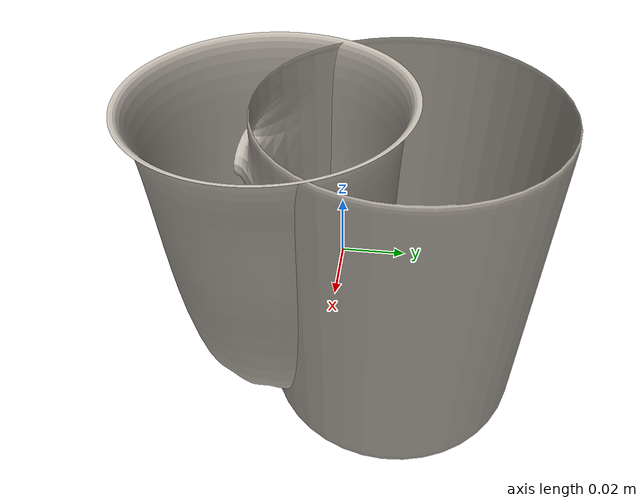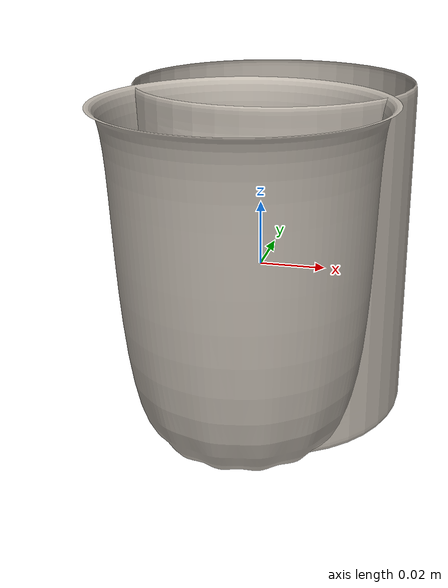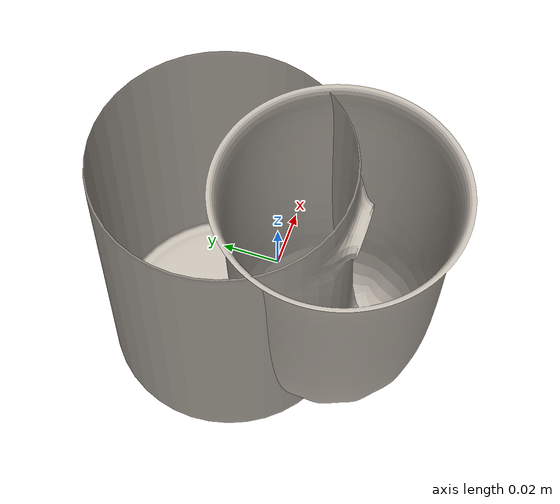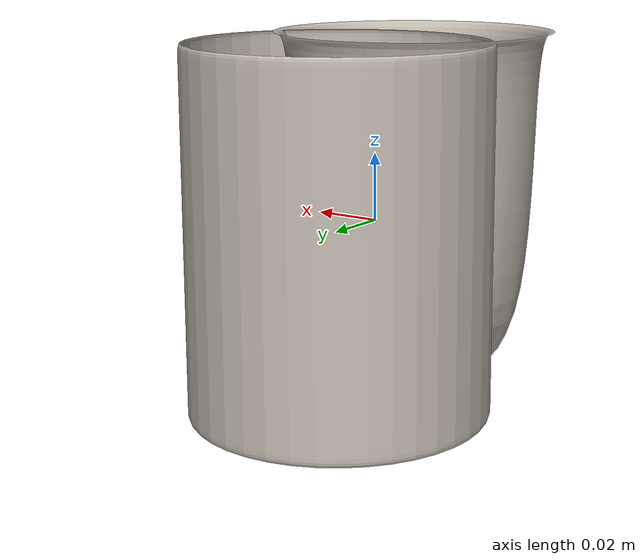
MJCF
<mujoco model="mug_69">
  <asset>
    <mesh file="visual/model_normalized_0.obj" name="model_normalized_0_vis" scale="0.125 0.125 0.125" refquat="0.7071067811865475 0.0 0.0 0.7071067811865476"/>
    <mesh file="visual/model_normalized_1.obj" name="model_normalized_1_vis" scale="0.125 0.125 0.125" refquat="0.7071067811865475 0.0 0.0 0.7071067811865476"/>
    <texture type="2d" name="image0" file="visual/image0.png"/>
    <material name="lambert1.044" texture="image0" specular="0.1" shininess="0.2" emission="0.15"/>
    <material name="phongE1.001" texture="image0" specular="0.1" shininess="0.2" emission="0.15"/>
    <mesh file="collision/collision_mesh_collision_0.obj" name="mug_collision_mesh_0" scale="0.125 0.125 0.125" refquat="0.7071067811865475 0.0 0.0 0.7071067811865476"/>
    <mesh file="collision/collision_mesh_collision_1.obj" name="mug_collision_mesh_1" scale="0.125 0.125 0.125" refquat="0.7071067811865475 0.0 0.0 0.7071067811865476"/>
    <mesh file="collision/collision_mesh_collision_2.obj" name="mug_collision_mesh_2" scale="0.125 0.125 0.125" refquat="0.7071067811865475 0.0 0.0 0.7071067811865476"/>
    <mesh file="collision/collision_mesh_collision_3.obj" name="mug_collision_mesh_3" scale="0.125 0.125 0.125" refquat="0.7071067811865475 0.0 0.0 0.7071067811865476"/>
    <mesh file="collision/collision_mesh_collision_4.obj" name="mug_collision_mesh_4" scale="0.125 0.125 0.125" refquat="0.7071067811865475 0.0 0.0 0.7071067811865476"/>
    <mesh file="collision/collision_mesh_collision_5.obj" name="mug_collision_mesh_5" scale="0.125 0.125 0.125" refquat="0.7071067811865475 0.0 0.0 0.7071067811865476"/>
    <mesh file="collision/collision_mesh_collision_6.obj" name="mug_collision_mesh_6" scale="0.125 0.125 0.125" refquat="0.7071067811865475 0.0 0.0 0.7071067811865476"/>
    <mesh file="collision/collision_mesh_collision_7.obj" name="mug_collision_mesh_7" scale="0.125 0.125 0.125" refquat="0.7071067811865475 0.0 0.0 0.7071067811865476"/>
    <mesh file="collision/collision_mesh_collision_8.obj" name="mug_collision_mesh_8" scale="0.125 0.125 0.125" refquat="0.7071067811865475 0.0 0.0 0.7071067811865476"/>
    <mesh file="collision/collision_mesh_collision_9.obj" name="mug_collision_mesh_9" scale="0.125 0.125 0.125" refquat="0.7071067811865475 0.0 0.0 0.7071067811865476"/>
    <mesh file="collision/collision_mesh_collision_10.obj" name="mug_collision_mesh_10" scale="0.125 0.125 0.125" refquat="0.7071067811865475 0.0 0.0 0.7071067811865476"/>
    <mesh file="collision/collision_mesh_collision_11.obj" name="mug_collision_mesh_11" scale="0.125 0.125 0.125" refquat="0.7071067811865475 0.0 0.0 0.7071067811865476"/>
    <mesh file="collision/collision_mesh_collision_12.obj" name="mug_collision_mesh_12" scale="0.125 0.125 0.125" refquat="0.7071067811865475 0.0 0.0 0.7071067811865476"/>
    <mesh file="collision/collision_mesh_collision_13.obj" name="mug_collision_mesh_13" scale="0.125 0.125 0.125" refquat="0.7071067811865475 0.0 0.0 0.7071067811865476"/>
    <mesh file="collision/collision_mesh_collision_14.obj" name="mug_collision_mesh_14" scale="0.125 0.125 0.125" refquat="0.7071067811865475 0.0 0.0 0.7071067811865476"/>
    <mesh file="collision/collision_mesh_collision_15.obj" name="mug_collision_mesh_15" scale="0.125 0.125 0.125" refquat="0.7071067811865475 0.0 0.0 0.7071067811865476"/>
  </asset>
  <default>
    <default class="region">
      <geom group="1" conaffinity="0" contype="0" rgba="0 1 0 0" density="0"/>
    </default>
    <default class="collision">
      <geom group="3" rgba="0.5 0 0 0.5" density="0"/>
    </default>
  </default>
  <worldbody>
    <body>
      <body name="object">
        <geom density="0" friction="1.2 0.05 0.001" type="mesh" mesh="model_normalized_0_vis" conaffinity="0" contype="0" group="1" material="lambert1.044" mass="0.3"/>
        <geom density="0" friction="1.2 0.05 0.001" type="mesh" mesh="model_normalized_1_vis" conaffinity="0" contype="0" group="1" material="phongE1.001"/>
        <geom class="region" name="reg_bbox" type="box" pos="6.23750000001283e-07 2.7224374999995637e-05 -3.366375000000109e-05" size="0.05535923125 0.063070893125 0.03010715875" density="0"/>        <geom mesh="mug_collision_mesh_0" type="mesh" class="collision" density="0"/>
        <geom mesh="mug_collision_mesh_1" type="mesh" class="collision" density="0"/>
        <geom mesh="mug_collision_mesh_2" type="mesh" class="collision" density="0"/>
        <geom mesh="mug_collision_mesh_3" type="mesh" class="collision" density="0"/>
        <geom mesh="mug_collision_mesh_4" type="mesh" class="collision" density="0"/>
        <geom mesh="mug_collision_mesh_5" type="mesh" class="collision" density="0"/>
        <geom mesh="mug_collision_mesh_6" type="mesh" class="collision" density="0"/>
        <geom mesh="mug_collision_mesh_7" type="mesh" class="collision" density="0"/>
        <geom mesh="mug_collision_mesh_8" type="mesh" class="collision" density="0"/>
        <geom mesh="mug_collision_mesh_9" type="mesh" class="collision" density="0"/>
        <geom mesh="mug_collision_mesh_10" type="mesh" class="collision" density="0"/>
        <geom mesh="mug_collision_mesh_11" type="mesh" class="collision" density="0"/>
        <geom mesh="mug_collision_mesh_12" type="mesh" class="collision" density="0"/>
        <geom mesh="mug_collision_mesh_13" type="mesh" class="collision" density="0"/>
        <geom mesh="mug_collision_mesh_14" type="mesh" class="collision" density="0"/>
        <geom mesh="mug_collision_mesh_15" type="mesh" class="collision" density="0"/>
        <geom rgba="0 0 0 0" size="0.04 0.02" pos="0 0.008 0" type="cylinder" name="liquid" class="region" density="0"/>        <geom rgba="0 0 0 0 " size="0.035 0.023" pos="0 0.008 0.005" type="cylinder" name="reg_int" class="region" density="0"/>      </body>
    </body>
  </worldbody>
</mujoco>
